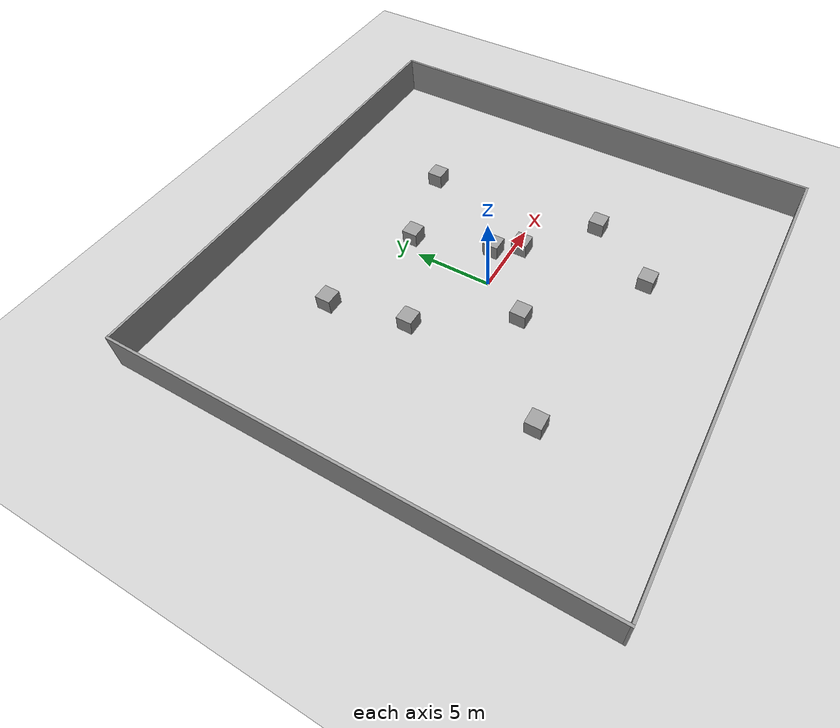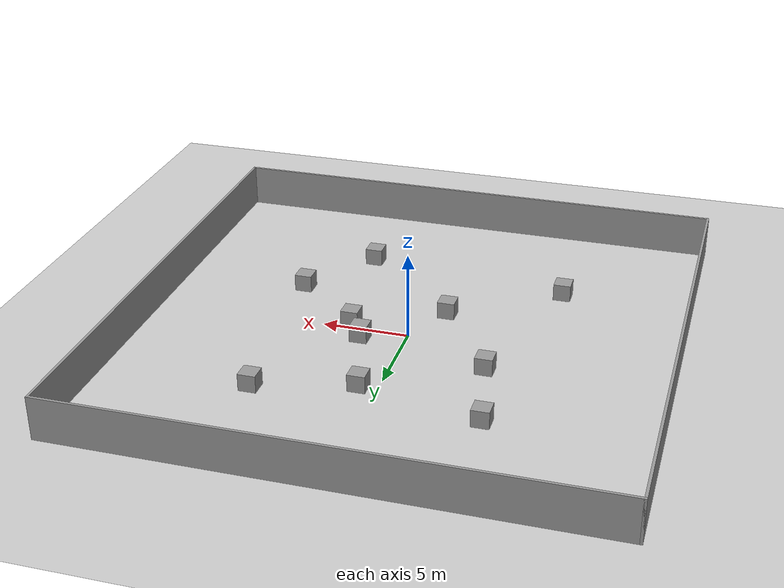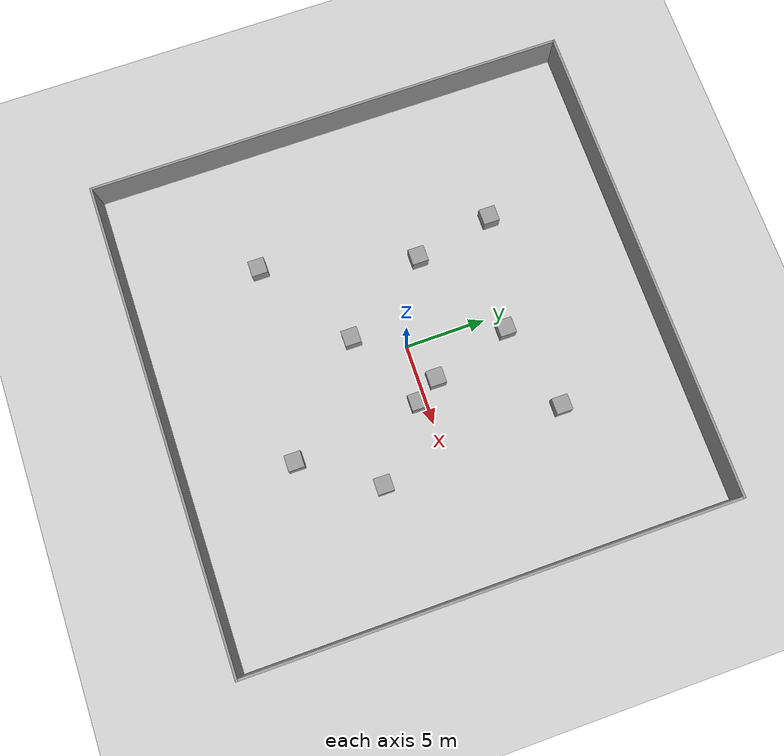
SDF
<sdf version="1.7">
 <world name="default">
  <light name="sun" type="directional">
   <pose>0 0 10 0 -0 0</pose>
   <diffuse>0.8 0.8 0.8 1</diffuse>
   <specular>0.2 0.2 0.2 1</specular>
   <attenuation>
    <range>1000</range>
    <constant>0.9</constant>
    <linear>0.01</linear>
    <quadratic>0.001</quadratic>
   </attenuation>
   <direction>-0.5 0.1 -0.9</direction>
   <spot><inner_angle>0</inner_angle><outer_angle>0</outer_angle><falloff>0</falloff></spot>
  </light>
  <model name="ground_plane">
   <static>1</static>
   <link name="link">
    <collision name="collision">
     <geometry><plane><normal>0 0 1</normal><size>100 100</size></plane></geometry>
     <surface><friction><ode><mu>100</mu><mu2>50</mu2></ode></friction></surface>
    </collision>
    <visual name="visual">
     <cast_shadows>0</cast_shadows>
     <geometry><plane><normal>0 0 1</normal><size>100 100</size></plane></geometry>
     <material>
      <script><uri>file://media/materials/scripts/gazebo.material</uri><name>Gazebo/Grey</name></script>
     </material>
    </visual>
   </link>
  </model>
  <gravity>0 0 -9.8</gravity>
  <magnetic_field>6e-06 2.3e-05 -4.2e-05</magnetic_field>
  <atmosphere type="adiabatic"/>
  <physics type="ode">
   <max_step_size>0.001</max_step_size>
   <real_time_factor>1</real_time_factor>
   <real_time_update_rate>1000</real_time_update_rate>
  </physics>
  <scene><ambient>0.4 0.4 0.4 1</ambient><background>0.7 0.7 0.7 1</background><shadows>1</shadows></scene>
  <spherical_coordinates>
   <surface_model>EARTH_WGS84</surface_model>
   <latitude_deg>0</latitude_deg>
   <longitude_deg>0</longitude_deg>
   <elevation>0</elevation>
   <heading_deg>0</heading_deg>
  </spherical_coordinates>
  <model name="map">
   <link name="Wall_0">
    <collision name="Wall_0_Collision">
     <geometry><box><size>30.15 0.15 2.5</size></box></geometry>
     <pose>0 0 1.25 0 -0 0</pose>
    </collision>
    <visual name="Wall_0_Visual">
     <pose>0 0 1.25 0 -0 0</pose>
     <geometry><box><size>30.15 0.15 2.5</size></box></geometry>
     <material>
      <script><uri>file://media/materials/scripts/gazebo.material</uri><name>Gazebo/Grey</name></script>
      <ambient>1 1 1 1</ambient>
     </material>
     <meta><layer>0</layer></meta>
    </visual>
    <pose>-15 0 0 0 -0 1.5708</pose>
   </link>
   <link name="Wall_1">
    <collision name="Wall_1_Collision">
     <geometry><box><size>30.15 0.15 2.5</size></box></geometry>
     <pose>0 0 1.25 0 -0 0</pose>
    </collision>
    <visual name="Wall_1_Visual">
     <pose>0 0 1.25 0 -0 0</pose>
     <geometry><box><size>30.15 0.15 2.5</size></box></geometry>
     <material>
      <script><uri>file://media/materials/scripts/gazebo.material</uri><name>Gazebo/Grey</name></script>
      <ambient>1 1 1 1</ambient>
     </material>
     <meta><layer>0</layer></meta>
    </visual>
    <pose>0 15 0 0 -0 0</pose>
   </link>
   <link name="Wall_5">
    <collision name="Wall_5_Collision">
     <geometry><box><size>30 0.15 2.5</size></box></geometry>
     <pose>0 0 1.25 0 -0 0</pose>
    </collision>
    <visual name="Wall_5_Visual">
     <pose>0 0 1.25 0 -0 0</pose>
     <geometry><box><size>30 0.15 2.5</size></box></geometry>
     <material>
      <script><uri>file://media/materials/scripts/gazebo.material</uri><name>Gazebo/Grey</name></script>
      <ambient>1 1 1 1</ambient>
     </material>
     <meta><layer>0</layer></meta>
    </visual>
    <pose>15 0.075 0 0 -0 -1.5708</pose>
   </link>
   <link name="Wall_7">
    <collision name="Wall_7_Collision">
     <geometry><box><size>30.15 0.15 2.5</size></box></geometry>
     <pose>0 0 1.25 0 -0 0</pose>
    </collision>
    <visual name="Wall_7_Visual">
     <pose>0 0 1.25 0 -0 0</pose>
     <geometry><box><size>30.15 0.15 2.5</size></box></geometry>
     <material>
      <script><uri>file://media/materials/scripts/gazebo.material</uri><name>Gazebo/Grey</name></script>
      <ambient>1 1 1 1</ambient>
     </material>
     <meta><layer>0</layer></meta>
    </visual>
    <pose>0 -15 0 0 -0 0</pose>
   </link>
   <static>1</static>
  </model>
  <model name="unit_box">
   <pose>-6 7.5 0.5 0 -0 0</pose>
   <link name="link">
    <inertial>
     <mass>1</mass>
     <inertia>
      <ixx>0.166667</ixx>
      <ixy>0</ixy>
      <ixz>0</ixz>
      <iyy>0.166667</iyy>
      <iyz>0</iyz>
      <izz>0.166667</izz>
     </inertia>
    </inertial>
    <collision name="collision"><geometry><box><size>1 1 1</size></box></geometry></collision>
    <visual name="visual">
     <geometry><box><size>1 1 1</size></box></geometry>
     <material>
      <script><name>Gazebo/Grey</name><uri>file://media/materials/scripts/gazebo.material</uri></script>
     </material>
    </visual>
   </link>
  </model>
  <model name="unit_box_0">
   <pose>1 6 0.5 0 -0 0</pose>
   <link name="link">
    <inertial>
     <mass>1</mass>
     <inertia>
      <ixx>0.166667</ixx>
      <ixy>0</ixy>
      <ixz>0</ixz>
      <iyy>0.166667</iyy>
      <iyz>0</iyz>
      <izz>0.166667</izz>
     </inertia>
    </inertial>
    <collision name="collision"><geometry><box><size>1 1 1</size></box></geometry></collision>
    <visual name="visual">
     <geometry><box><size>1 1 1</size></box></geometry>
     <material>
      <script><name>Gazebo/Grey</name><uri>file://media/materials/scripts/gazebo.material</uri></script>
     </material>
    </visual>
   </link>
  </model>
  <model name="unit_box_1">
   <pose>6.5 7.5 0.5 0 -0 0</pose>
   <link name="link">
    <inertial>
     <mass>1</mass>
     <inertia>
      <ixx>0.166667</ixx>
      <ixy>0</ixy>
      <ixz>0</ixz>
      <iyy>0.166667</iyy>
      <iyz>0</iyz>
      <izz>0.166667</izz>
     </inertia>
    </inertial>
    <collision name="collision"><geometry><box><size>1 1 1</size></box></geometry></collision>
    <visual name="visual">
     <geometry><box><size>1 1 1</size></box></geometry>
     <material>
      <script><name>Gazebo/Grey</name><uri>file://media/materials/scripts/gazebo.material</uri></script>
     </material>
    </visual>
   </link>
  </model>
  <model name="unit_box_2">
   <pose>-5 2.5 0.5 0 -0 0</pose>
   <link name="link">
    <inertial>
     <mass>1</mass>
     <inertia>
      <ixx>0.166667</ixx>
      <ixy>0</ixy>
      <ixz>0</ixz>
      <iyy>0.166667</iyy>
      <iyz>0</iyz>
      <izz>0.166667</izz>
     </inertia>
    </inertial>
    <collision name="collision"><geometry><box><size>1 1 1</size></box></geometry></collision>
    <visual name="visual">
     <geometry><box><size>1 1 1</size></box></geometry>
     <material>
      <script><name>Gazebo/Grey</name><uri>file://media/materials/scripts/gazebo.material</uri></script>
     </material>
    </visual>
   </link>
  </model>
  <model name="unit_box_3">
   <pose>2.5 1 0.5 0 -0 0</pose>
   <link name="link">
    <inertial>
     <mass>1</mass>
     <inertia>
      <ixx>0.166667</ixx>
      <ixy>0</ixy>
      <ixz>0</ixz>
      <iyy>0.166667</iyy>
      <iyz>0</iyz>
      <izz>0.166667</izz>
     </inertia>
    </inertial>
    <collision name="collision"><geometry><box><size>1 1 1</size></box></geometry></collision>
    <visual name="visual">
     <geometry><box><size>1 1 1</size></box></geometry>
     <material>
      <script><name>Gazebo/Grey</name><uri>file://media/materials/scripts/gazebo.material</uri></script>
     </material>
    </visual>
   </link>
  </model>
  <model name="unit_box_4">
   <pose>3.5 -0.5 0.5 0 -0 0</pose>
   <link name="link">
    <inertial>
     <mass>1</mass>
     <inertia>
      <ixx>0.166667</ixx>
      <ixy>0</ixy>
      <ixz>0</ixz>
      <iyy>0.166667</iyy>
      <iyz>0</iyz>
      <izz>0.166667</izz>
     </inertia>
    </inertial>
    <collision name="collision"><geometry><box><size>1 1 1</size></box></geometry></collision>
    <visual name="visual">
     <geometry><box><size>1 1 1</size></box></geometry>
     <material>
      <script><name>Gazebo/Grey</name><uri>file://media/materials/scripts/gazebo.material</uri></script>
     </material>
    </visual>
   </link>
  </model>
  <model name="unit_box_5">
   <pose>-1.5 -3 0.5 0 -0 0</pose>
   <link name="link">
    <inertial>
     <mass>1</mass>
     <inertia>
      <ixx>0.166667</ixx>
      <ixy>0</ixy>
      <ixz>0</ixz>
      <iyy>0.166667</iyy>
      <iyz>0</iyz>
      <izz>0.166667</izz>
     </inertia>
    </inertial>
    <collision name="collision"><geometry><box><size>1 1 1</size></box></geometry></collision>
    <visual name="visual">
     <geometry><box><size>1 1 1</size></box></geometry>
     <material>
      <script><name>Gazebo/Grey</name><uri>file://media/materials/scripts/gazebo.material</uri></script>
     </material>
    </visual>
   </link>
  </model>
  <model name="unit_box_6">
   <pose>-7.5 -7 0.5 0 -0 0</pose>
   <link name="link">
    <inertial>
     <mass>1</mass>
     <inertia>
      <ixx>0.166667</ixx>
      <ixy>0</ixy>
      <ixz>0</ixz>
      <iyy>0.166667</iyy>
      <iyz>0</iyz>
      <izz>0.166667</izz>
     </inertia>
    </inertial>
    <collision name="collision"><geometry><box><size>1 1 1</size></box></geometry></collision>
    <visual name="visual">
     <geometry><box><size>1 1 1</size></box></geometry>
     <material>
      <script><name>Gazebo/Grey</name><uri>file://media/materials/scripts/gazebo.material</uri></script>
     </material>
    </visual>
   </link>
  </model>
  <model name="unit_box_7">
   <pose>7.5 -4 0.5 0 -0 0</pose>
   <link name="link">
    <inertial>
     <mass>1</mass>
     <inertia>
      <ixx>0.166667</ixx>
      <ixy>0</ixy>
      <ixz>0</ixz>
      <iyy>0.166667</iyy>
      <iyz>0</iyz>
      <izz>0.166667</izz>
     </inertia>
    </inertial>
    <collision name="collision"><geometry><box><size>1 1 1</size></box></geometry></collision>
    <visual name="visual">
     <geometry><box><size>1 1 1</size></box></geometry>
     <material>
      <script><name>Gazebo/Grey</name><uri>file://media/materials/scripts/gazebo.material</uri></script>
     </material>
    </visual>
   </link>
  </model>
  <model name="unit_box_8">
   <pose>4.5 -8.5 0.5 0 -0 0</pose>
   <link name="link">
    <inertial>
     <mass>1</mass>
     <inertia>
      <ixx>0.166667</ixx>
      <ixy>0</ixy>
      <ixz>0</ixz>
      <iyy>0.166667</iyy>
      <iyz>0</iyz>
      <izz>0.166667</izz>
     </inertia>
    </inertial>
    <collision name="collision"><geometry><box><size>1 1 1</size></box></geometry></collision>
    <visual name="visual">
     <geometry><box><size>1 1 1</size></box></geometry>
     <material>
      <script><name>Gazebo/Grey</name><uri>file://media/materials/scripts/gazebo.material</uri></script>
     </material>
    </visual>
   </link>
  </model>
 </world>
</sdf>
